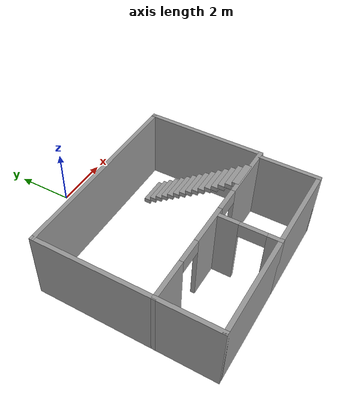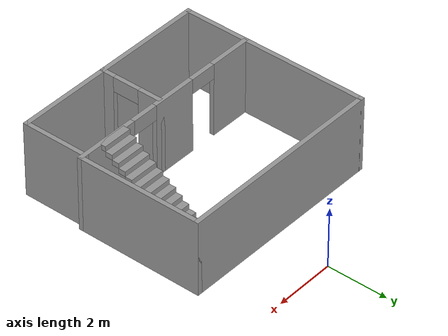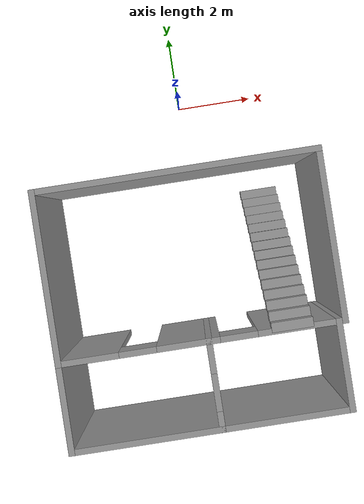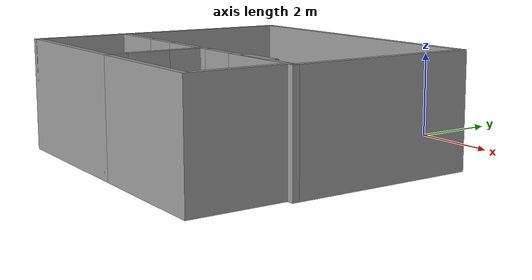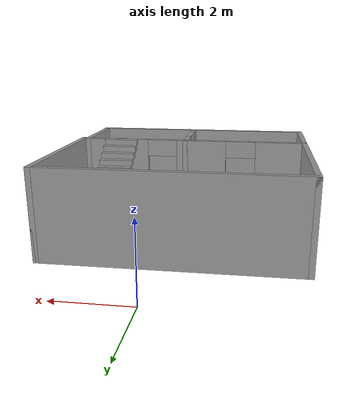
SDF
<?xml version='1.0'?>
<sdf version='1.7'>
  <model name='room'>
    <pose>-0.335 -4.1125 0 0 -0 0</pose>
    <link name='Stairs_0'>
      <visual name='Stairs_0_Visual_0'>
        <pose>2.175 1.41583 0.083333 0 -0 0</pose>
        <geometry>
          <box>
            <size>1 0.233333 0.166667</size>
          </box>
        </geometry>
        <material>
          <script>
            <uri>file://media/materials/scripts/gazebo.material</uri>
            <name>Gazebo/Grey</name>
          </script>
          <ambient>1 1 1 1</ambient>
        </material>
        <meta>
          <layer>0</layer>
        </meta>
      </visual>
      <collision name='Stairs_0_Collision_0'>
        <geometry>
          <box>
            <size>1 0.233333 0.166667</size>
          </box>
        </geometry>
        <pose>2.175 1.41583 0.083333 0 -0 0</pose>
      </collision>
      <visual name='Stairs_0_Visual_1'>
        <pose>2.175 1.1825 0.25 0 -0 0</pose>
        <geometry>
          <box>
            <size>1 0.233333 0.166667</size>
          </box>
        </geometry>
        <material>
          <script>
            <uri>file://media/materials/scripts/gazebo.material</uri>
            <name>Gazebo/Grey</name>
          </script>
          <ambient>1 1 1 1</ambient>
        </material>
        <meta>
          <layer>0</layer>
        </meta>
      </visual>
      <collision name='Stairs_0_Collision_1'>
        <geometry>
          <box>
            <size>1 0.233333 0.166667</size>
          </box>
        </geometry>
        <pose>2.175 1.1825 0.25 0 -0 0</pose>
      </collision>
      <visual name='Stairs_0_Visual_2'>
        <pose>2.175 0.949167 0.416667 0 -0 0</pose>
        <geometry>
          <box>
            <size>1 0.233333 0.166667</size>
          </box>
        </geometry>
        <material>
          <script>
            <uri>file://media/materials/scripts/gazebo.material</uri>
            <name>Gazebo/Grey</name>
          </script>
          <ambient>1 1 1 1</ambient>
        </material>
        <meta>
          <layer>0</layer>
        </meta>
      </visual>
      <collision name='Stairs_0_Collision_2'>
        <geometry>
          <box>
            <size>1 0.233333 0.166667</size>
          </box>
        </geometry>
        <pose>2.175 0.949167 0.416667 0 -0 0</pose>
      </collision>
      <visual name='Stairs_0_Visual_3'>
        <pose>2.175 0.715834 0.583333 0 -0 0</pose>
        <geometry>
          <box>
            <size>1 0.233333 0.166667</size>
          </box>
        </geometry>
        <material>
          <script>
            <uri>file://media/materials/scripts/gazebo.material</uri>
            <name>Gazebo/Grey</name>
          </script>
          <ambient>1 1 1 1</ambient>
        </material>
        <meta>
          <layer>0</layer>
        </meta>
      </visual>
      <collision name='Stairs_0_Collision_3'>
        <geometry>
          <box>
            <size>1 0.233333 0.166667</size>
          </box>
        </geometry>
        <pose>2.175 0.715834 0.583333 0 -0 0</pose>
      </collision>
      <visual name='Stairs_0_Visual_4'>
        <pose>2.175 0.4825 0.75 0 -0 0</pose>
        <geometry>
          <box>
            <size>1 0.233333 0.166667</size>
          </box>
        </geometry>
        <material>
          <script>
            <uri>file://media/materials/scripts/gazebo.material</uri>
            <name>Gazebo/Grey</name>
          </script>
          <ambient>1 1 1 1</ambient>
        </material>
        <meta>
          <layer>0</layer>
        </meta>
      </visual>
      <collision name='Stairs_0_Collision_4'>
        <geometry>
          <box>
            <size>1 0.233333 0.166667</size>
          </box>
        </geometry>
        <pose>2.175 0.4825 0.75 0 -0 0</pose>
      </collision>
      <visual name='Stairs_0_Visual_5'>
        <pose>2.175 0.249167 0.916667 0 -0 0</pose>
        <geometry>
          <box>
            <size>1 0.233333 0.166667</size>
          </box>
        </geometry>
        <material>
          <script>
            <uri>file://media/materials/scripts/gazebo.material</uri>
            <name>Gazebo/Grey</name>
          </script>
          <ambient>1 1 1 1</ambient>
        </material>
        <meta>
          <layer>0</layer>
        </meta>
      </visual>
      <collision name='Stairs_0_Collision_5'>
        <geometry>
          <box>
            <size>1 0.233333 0.166667</size>
          </box>
        </geometry>
        <pose>2.175 0.249167 0.916667 0 -0 0</pose>
      </collision>
      <visual name='Stairs_0_Visual_6'>
        <pose>2.175 0.015834 1.08333 0 -0 0</pose>
        <geometry>
          <box>
            <size>1 0.233333 0.166667</size>
          </box>
        </geometry>
        <material>
          <script>
            <uri>file://media/materials/scripts/gazebo.material</uri>
            <name>Gazebo/Grey</name>
          </script>
          <ambient>1 1 1 1</ambient>
        </material>
        <meta>
          <layer>0</layer>
        </meta>
      </visual>
      <collision name='Stairs_0_Collision_6'>
        <geometry>
          <box>
            <size>1 0.233333 0.166667</size>
          </box>
        </geometry>
        <pose>2.175 0.015834 1.08333 0 -0 0</pose>
      </collision>
      <visual name='Stairs_0_Visual_7'>
        <pose>2.175 -0.2175 1.25 0 -0 0</pose>
        <geometry>
          <box>
            <size>1 0.233333 0.166667</size>
          </box>
        </geometry>
        <material>
          <script>
            <uri>file://media/materials/scripts/gazebo.material</uri>
            <name>Gazebo/Grey</name>
          </script>
          <ambient>1 1 1 1</ambient>
        </material>
        <meta>
          <layer>0</layer>
        </meta>
      </visual>
      <collision name='Stairs_0_Collision_7'>
        <geometry>
          <box>
            <size>1 0.233333 0.166667</size>
          </box>
        </geometry>
        <pose>2.175 -0.2175 1.25 0 -0 0</pose>
      </collision>
      <visual name='Stairs_0_Visual_8'>
        <pose>2.175 -0.450833 1.41667 0 -0 0</pose>
        <geometry>
          <box>
            <size>1 0.233333 0.166667</size>
          </box>
        </geometry>
        <material>
          <script>
            <uri>file://media/materials/scripts/gazebo.material</uri>
            <name>Gazebo/Grey</name>
          </script>
          <ambient>1 1 1 1</ambient>
        </material>
        <meta>
          <layer>0</layer>
        </meta>
      </visual>
      <collision name='Stairs_0_Collision_8'>
        <geometry>
          <box>
            <size>1 0.233333 0.166667</size>
          </box>
        </geometry>
        <pose>2.175 -0.450833 1.41667 0 -0 0</pose>
      </collision>
      <visual name='Stairs_0_Visual_9'>
        <pose>2.175 -0.684166 1.58333 0 -0 0</pose>
        <geometry>
          <box>
            <size>1 0.233333 0.166667</size>
          </box>
        </geometry>
        <material>
          <script>
            <uri>file://media/materials/scripts/gazebo.material</uri>
            <name>Gazebo/Grey</name>
          </script>
          <ambient>1 1 1 1</ambient>
        </material>
        <meta>
          <layer>0</layer>
        </meta>
      </visual>
      <collision name='Stairs_0_Collision_9'>
        <geometry>
          <box>
            <size>1 0.233333 0.166667</size>
          </box>
        </geometry>
        <pose>2.175 -0.684166 1.58333 0 -0 0</pose>
      </collision>
      <visual name='Stairs_0_Visual_10'>
        <pose>2.175 -0.9175 1.75 0 -0 0</pose>
        <geometry>
          <box>
            <size>1 0.233333 0.166667</size>
          </box>
        </geometry>
        <material>
          <script>
            <uri>file://media/materials/scripts/gazebo.material</uri>
            <name>Gazebo/Grey</name>
          </script>
          <ambient>1 1 1 1</ambient>
        </material>
        <meta>
          <layer>0</layer>
        </meta>
      </visual>
      <collision name='Stairs_0_Collision_10'>
        <geometry>
          <box>
            <size>1 0.233333 0.166667</size>
          </box>
        </geometry>
        <pose>2.175 -0.9175 1.75 0 -0 0</pose>
      </collision>
      <visual name='Stairs_0_Visual_11'>
        <pose>2.175 -1.15083 1.91667 0 -0 0</pose>
        <geometry>
          <box>
            <size>1 0.233333 0.166667</size>
          </box>
        </geometry>
        <material>
          <script>
            <uri>file://media/materials/scripts/gazebo.material</uri>
            <name>Gazebo/Grey</name>
          </script>
          <ambient>1 1 1 1</ambient>
        </material>
        <meta>
          <layer>0</layer>
        </meta>
      </visual>
      <collision name='Stairs_0_Collision_11'>
        <geometry>
          <box>
            <size>1 0.233333 0.166667</size>
          </box>
        </geometry>
        <pose>2.175 -1.15083 1.91667 0 -0 0</pose>
      </collision>
      <visual name='Stairs_0_Visual_12'>
        <pose>2.175 -1.38417 2.08333 0 -0 0</pose>
        <geometry>
          <box>
            <size>1 0.233333 0.166667</size>
          </box>
        </geometry>
        <material>
          <script>
            <uri>file://media/materials/scripts/gazebo.material</uri>
            <name>Gazebo/Grey</name>
          </script>
          <ambient>1 1 1 1</ambient>
        </material>
        <meta>
          <layer>0</layer>
        </meta>
      </visual>
      <collision name='Stairs_0_Collision_12'>
        <geometry>
          <box>
            <size>1 0.233333 0.166667</size>
          </box>
        </geometry>
        <pose>2.175 -1.38417 2.08333 0 -0 0</pose>
      </collision>
      <visual name='Stairs_0_Visual_13'>
        <pose>2.175 -1.6175 2.25 0 -0 0</pose>
        <geometry>
          <box>
            <size>1 0.233333 0.166667</size>
          </box>
        </geometry>
        <material>
          <script>
            <uri>file://media/materials/scripts/gazebo.material</uri>
            <name>Gazebo/Grey</name>
          </script>
          <ambient>1 1 1 1</ambient>
        </material>
        <meta>
          <layer>0</layer>
        </meta>
      </visual>
      <collision name='Stairs_0_Collision_13'>
        <geometry>
          <box>
            <size>1 0.233333 0.166667</size>
          </box>
        </geometry>
        <pose>2.175 -1.6175 2.25 0 -0 0</pose>
      </collision>
      <visual name='Stairs_0_Visual_14'>
        <pose>2.175 -1.85083 2.41667 0 -0 0</pose>
        <geometry>
          <box>
            <size>1 0.233333 0.166667</size>
          </box>
        </geometry>
        <material>
          <script>
            <uri>file://media/materials/scripts/gazebo.material</uri>
            <name>Gazebo/Grey</name>
          </script>
          <ambient>1 1 1 1</ambient>
        </material>
        <meta>
          <layer>0</layer>
        </meta>
      </visual>
      <collision name='Stairs_0_Collision_14'>
        <geometry>
          <box>
            <size>1 0.233333 0.166667</size>
          </box>
        </geometry>
        <pose>2.175 -1.85083 2.41667 0 -0 0</pose>
      </collision>
    </link>
    <link name='Wall_0'>
      <collision name='Wall_0_Collision'>
        <geometry>
          <box>
            <size>4.25 0.15 2.5</size>
          </box>
        </geometry>
        <pose>0 0 1.25 0 -0 0</pose>
      </collision>
      <visual name='Wall_0_Visual'>
        <pose>0 0 1.25 0 -0 0</pose>
        <geometry>
          <box>
            <size>4.25 0.15 2.5</size>
          </box>
        </geometry>
        <material>
          <script>
            <uri>file://media/materials/scripts/gazebo.material</uri>
            <name>Gazebo/Grey</name>
          </script>
          <ambient>1 1 1 1</ambient>
        </material>
        <meta>
          <layer>0</layer>
        </meta>
      </visual>
      <pose>-3.425 0.1125 0 0 -0 1.5708</pose>
    </link>
    <link name='Wall_1'>
      <collision name='Wall_1_Collision'>
        <geometry>
          <box>
            <size>7 0.15 2.5</size>
          </box>
        </geometry>
        <pose>0 0 1.25 0 -0 0</pose>
      </collision>
      <visual name='Wall_1_Visual'>
        <pose>0 0 1.25 0 -0 0</pose>
        <geometry>
          <box>
            <size>7 0.15 2.5</size>
          </box>
        </geometry>
        <material>
          <script>
            <uri>file://media/materials/scripts/gazebo.material</uri>
            <name>Gazebo/Grey</name>
          </script>
          <ambient>1 1 1 1</ambient>
        </material>
        <meta>
          <layer>0</layer>
        </meta>
      </visual>
      <pose>0 2.1625 0 0 -0 0</pose>
    </link>
    <link name='Wall_10'>
      <collision name='Wall_10_Collision'>
        <geometry>
          <box>
            <size>2.25 0.15 2.5</size>
          </box>
        </geometry>
        <pose>0 0 1.25 0 -0 0</pose>
      </collision>
      <visual name='Wall_10_Visual'>
        <pose>0 0 1.25 0 -0 0</pose>
        <geometry>
          <box>
            <size>2.25 0.15 2.5</size>
          </box>
        </geometry>
        <material>
          <script>
            <uri>file://media/materials/scripts/gazebo.material</uri>
            <name>Gazebo/Grey</name>
          </script>
          <ambient>1 1 1 1</ambient>
        </material>
        <meta>
          <layer>0</layer>
        </meta>
      </visual>
      <pose>3.275 -2.9875 0 0 -0 1.5708</pose>
    </link>
    <link name='Wall_2'>
      <collision name='Wall_2_Collision'>
        <geometry>
          <box>
            <size>4.25 0.15 2.5</size>
          </box>
        </geometry>
        <pose>0 0 1.25 0 -0 0</pose>
      </collision>
      <visual name='Wall_2_Visual'>
        <pose>0 0 1.25 0 -0 0</pose>
        <geometry>
          <box>
            <size>4.25 0.15 2.5</size>
          </box>
        </geometry>
        <material>
          <script>
            <uri>file://media/materials/scripts/gazebo.material</uri>
            <name>Gazebo/Grey</name>
          </script>
          <ambient>1 1 1 1</ambient>
        </material>
        <meta>
          <layer>0</layer>
        </meta>
      </visual>
      <pose>3.425 0.1125 0 0 -0 -1.5708</pose>
    </link>
    <link name='Wall_3'>
      <pose>0 -1.9375 0 0 -0 3.14159</pose>
      <visual name='Wall_3_Visual_0'>
        <pose>-2.4225 0 1.25 0 -0 0</pose>
        <geometry>
          <box>
            <size>2.155 0.15 2.5</size>
          </box>
        </geometry>
        <material>
          <script>
            <uri>file://media/materials/scripts/gazebo.material</uri>
            <name>Gazebo/Grey</name>
          </script>
          <ambient>1 1 1 1</ambient>
        </material>
        <meta>
          <layer>0</layer>
        </meta>
      </visual>
      <collision name='Wall_3_Collision_0'>
        <geometry>
          <box>
            <size>2.155 0.15 2.5</size>
          </box>
        </geometry>
        <pose>-2.4225 0 1.25 0 -0 0</pose>
      </collision>
      <visual name='Wall_3_Visual_1'>
        <pose>0.315 0 1.25 0 -0 0</pose>
        <geometry>
          <box>
            <size>1.52 0.15 2.5</size>
          </box>
        </geometry>
        <material>
          <script>
            <uri>file://media/materials/scripts/gazebo.material</uri>
            <name>Gazebo/Grey</name>
          </script>
          <ambient>1 1 1 1</ambient>
        </material>
        <meta>
          <layer>0</layer>
        </meta>
      </visual>
      <collision name='Wall_3_Collision_1'>
        <geometry>
          <box>
            <size>1.52 0.15 2.5</size>
          </box>
        </geometry>
        <pose>0.315 0 1.25 0 -0 0</pose>
      </collision>
      <visual name='Wall_3_Visual_2'>
        <pose>2.7375 0 1.25 0 -0 0</pose>
        <geometry>
          <box>
            <size>1.525 0.15 2.5</size>
          </box>
        </geometry>
        <material>
          <script>
            <uri>file://media/materials/scripts/gazebo.material</uri>
            <name>Gazebo/Grey</name>
          </script>
          <ambient>1 1 1 1</ambient>
        </material>
        <meta>
          <layer>0</layer>
        </meta>
      </visual>
      <collision name='Wall_3_Collision_2'>
        <geometry>
          <box>
            <size>1.525 0.15 2.5</size>
          </box>
        </geometry>
        <pose>2.7375 0 1.25 0 -0 0</pose>
      </collision>
      <visual name='Wall_3_Visual_3'>
        <pose>-0.895 0 2.25 0 -0 0</pose>
        <geometry>
          <box>
            <size>0.9 0.15 0.5</size>
          </box>
        </geometry>
        <material>
          <script>
            <uri>file://media/materials/scripts/gazebo.material</uri>
            <name>Gazebo/Grey</name>
          </script>
          <ambient>1 1 1 1</ambient>
        </material>
        <meta>
          <layer>0</layer>
        </meta>
      </visual>
      <collision name='Wall_3_Collision_3'>
        <geometry>
          <box>
            <size>0.9 0.15 0.5</size>
          </box>
        </geometry>
        <pose>-0.895 0 2.25 0 -0 0</pose>
      </collision>
      <visual name='Wall_3_Visual_4'>
        <pose>1.525 0 2.25 0 -0 0</pose>
        <geometry>
          <box>
            <size>0.9 0.15 0.5</size>
          </box>
        </geometry>
        <material>
          <script>
            <uri>file://media/materials/scripts/gazebo.material</uri>
            <name>Gazebo/Grey</name>
          </script>
          <ambient>1 1 1 1</ambient>
        </material>
        <meta>
          <layer>0</layer>
        </meta>
      </visual>
      <collision name='Wall_3_Collision_4'>
        <geometry>
          <box>
            <size>0.9 0.15 0.5</size>
          </box>
        </geometry>
        <pose>1.525 0 2.25 0 -0 0</pose>
      </collision>
    </link>
    <link name='Wall_5'>
      <collision name='Wall_5_Collision'>
        <geometry>
          <box>
            <size>2.25 0.15 2.5</size>
          </box>
        </geometry>
        <pose>0 0 1.25 0 -0 0</pose>
      </collision>
      <visual name='Wall_5_Visual'>
        <pose>0 0 1.25 0 -0 0</pose>
        <geometry>
          <box>
            <size>2.25 0.15 2.5</size>
          </box>
        </geometry>
        <material>
          <script>
            <uri>file://media/materials/scripts/gazebo.material</uri>
            <name>Gazebo/Grey</name>
          </script>
          <ambient>1 1 1 1</ambient>
        </material>
        <meta>
          <layer>0</layer>
        </meta>
      </visual>
      <pose>-3.425 -2.9875 0 0 -0 -1.5708</pose>
    </link>
    <link name='Wall_6'>
      <collision name='Wall_6_Collision'>
        <geometry>
          <box>
            <size>3.75 0.15 2.5</size>
          </box>
        </geometry>
        <pose>0 0 1.25 0 -0 0</pose>
      </collision>
      <visual name='Wall_6_Visual'>
        <pose>0 0 1.25 0 -0 0</pose>
        <geometry>
          <box>
            <size>3.75 0.15 2.5</size>
          </box>
        </geometry>
        <material>
          <script>
            <uri>file://media/materials/scripts/gazebo.material</uri>
            <name>Gazebo/Grey</name>
          </script>
          <ambient>1 1 1 1</ambient>
        </material>
        <meta>
          <layer>0</layer>
        </meta>
      </visual>
      <pose>-1.625 -4.0375 0 0 -0 0</pose>
    </link>
    <link name='Wall_7'>
      <pose>0.175 -2.9875 0 0 -0 1.5708</pose>
      <visual name='Wall_7_Visual_0'>
        <pose>-0.8725 0 1.25 0 -0 0</pose>
        <geometry>
          <box>
            <size>0.505 0.15 2.5</size>
          </box>
        </geometry>
        <material>
          <script>
            <uri>file://media/materials/scripts/gazebo.material</uri>
            <name>Gazebo/Grey</name>
          </script>
          <ambient>1 1 1 1</ambient>
        </material>
        <meta>
          <layer>0</layer>
        </meta>
      </visual>
      <collision name='Wall_7_Collision_0'>
        <geometry>
          <box>
            <size>0.505 0.15 2.5</size>
          </box>
        </geometry>
        <pose>-0.8725 0 1.25 0 -0 0</pose>
      </collision>
      <visual name='Wall_7_Visual_1'>
        <pose>0.7025 0 1.25 0 -0 0</pose>
        <geometry>
          <box>
            <size>0.845 0.15 2.5</size>
          </box>
        </geometry>
        <material>
          <script>
            <uri>file://media/materials/scripts/gazebo.material</uri>
            <name>Gazebo/Grey</name>
          </script>
          <ambient>1 1 1 1</ambient>
        </material>
        <meta>
          <layer>0</layer>
        </meta>
      </visual>
      <collision name='Wall_7_Collision_1'>
        <geometry>
          <box>
            <size>0.845 0.15 2.5</size>
          </box>
        </geometry>
        <pose>0.7025 0 1.25 0 -0 0</pose>
      </collision>
      <visual name='Wall_7_Visual_2'>
        <pose>-0.17 0 2.25 0 -0 0</pose>
        <geometry>
          <box>
            <size>0.9 0.15 0.5</size>
          </box>
        </geometry>
        <material>
          <script>
            <uri>file://media/materials/scripts/gazebo.material</uri>
            <name>Gazebo/Grey</name>
          </script>
          <ambient>1 1 1 1</ambient>
        </material>
        <meta>
          <layer>0</layer>
        </meta>
      </visual>
      <collision name='Wall_7_Collision_2'>
        <geometry>
          <box>
            <size>0.9 0.15 0.5</size>
          </box>
        </geometry>
        <pose>-0.17 0 2.25 0 -0 0</pose>
      </collision>
    </link>
    <link name='Wall_9'>
      <collision name='Wall_9_Collision'>
        <geometry>
          <box>
            <size>3.25 0.15 2.5</size>
          </box>
        </geometry>
        <pose>0 0 1.25 0 -0 0</pose>
      </collision>
      <visual name='Wall_9_Visual'>
        <pose>0 0 1.25 0 -0 0</pose>
        <geometry>
          <box>
            <size>3.25 0.15 2.5</size>
          </box>
        </geometry>
        <material>
          <script>
            <uri>file://media/materials/scripts/gazebo.material</uri>
            <name>Gazebo/Grey</name>
          </script>
          <ambient>1 1 1 1</ambient>
        </material>
        <meta>
          <layer>0</layer>
        </meta>
      </visual>
      <pose>1.725 -4.0375 0 0 -0 0</pose>
    </link>
    <static>1</static>
  </model>
</sdf>
